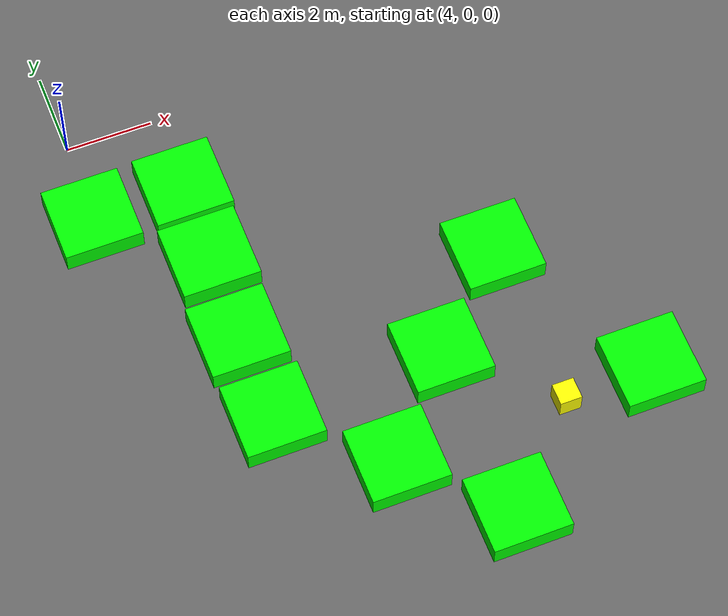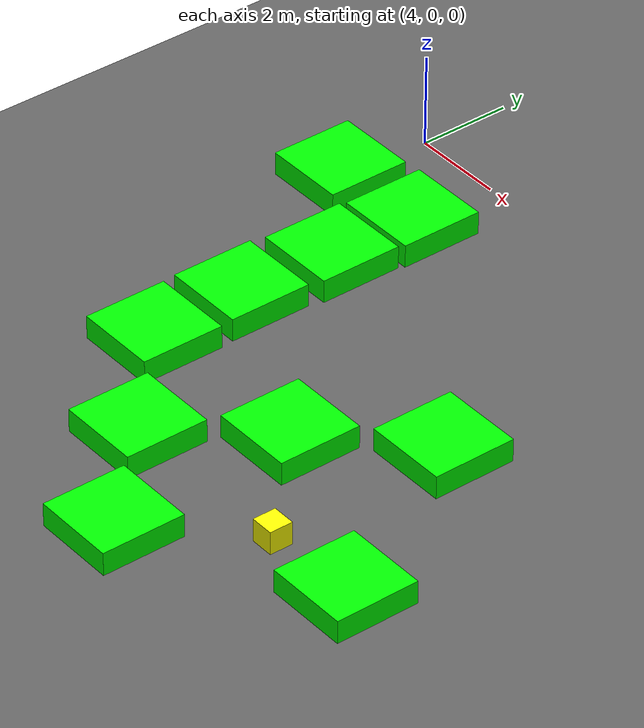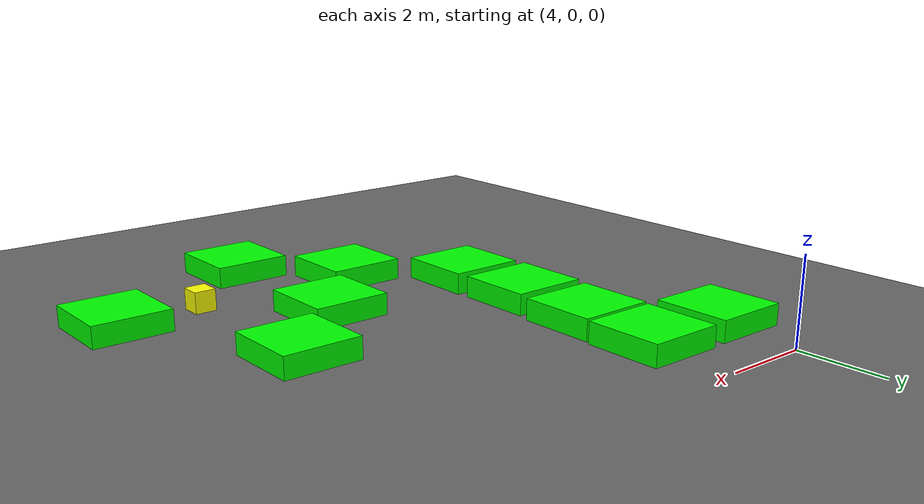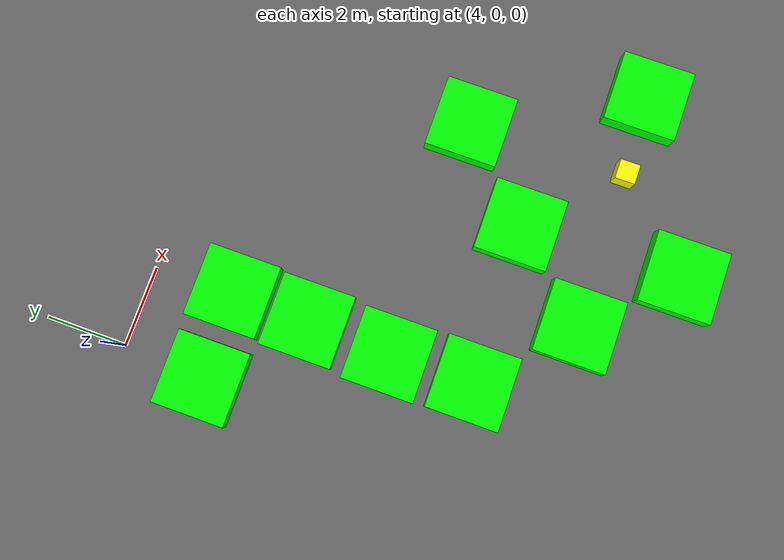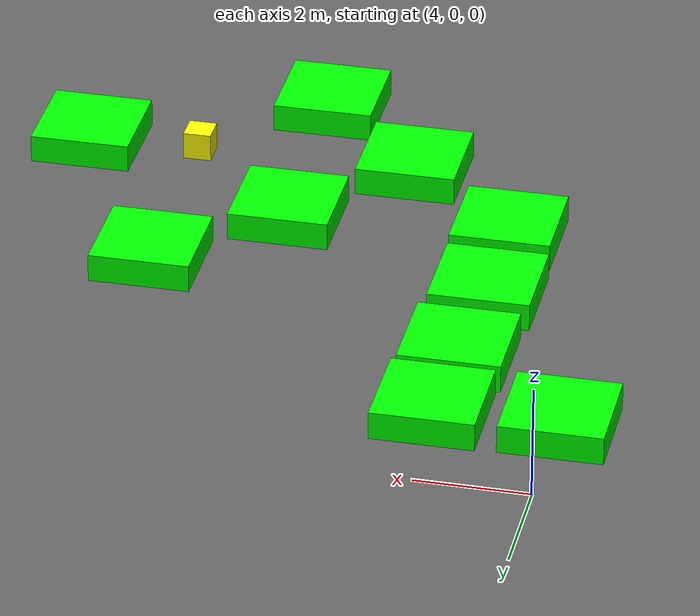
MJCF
<mujoco model="lvl4_standard_obs10_d3long_seed38">
    <compiler angle="degree" coordinate="local" inertiafromgeom="true"/>
    <option integrator="RK4" timestep="0.01"/>

    <asset>
        <texture builtin="gradient" height="100" rgb1="0.6 0.8 1" rgb2="0 0 0" type="skybox" width="100"/>
        <texture name="floor_texture" type="2d" builtin="checker" width="100" height="100" rgb1="0 0 0" rgb2="0.8 0.8 0.8"/>
        <material name="MatPlane" reflectance="0.5" shininess="1" specular="1" texrepeat="10 10" texture="floor_texture"/>
    </asset>

    <!-- Excluding the contact between the agent and the goal, and the agent and the floor -->
    <contact>
        <exclude body1="agent" body2="goal"/>
        <exclude body1 = "agent" body2 = "floor"/>
    </contact>

    <extension>
        <plugin plugin = "mujoco.pid">
            <instance name = "pid1">
                <config key="kp" value="2"/>
                <config key="ki" value="0"/>
                <config key="kd" value="55"/>
            </instance>
        </plugin>
    </extension>

    <worldbody>
        <light cutoff="100" diffuse="1 1 1" dir="-0 0 -1.3" directional="true" exponent="1" pos="0 0 1.3" specular=".1 .1 .1"/>
        <body name="floor" pos="0 0 0">
            <geom name="floor_geom" type="plane" size="20 20 0.1" material="MatPlane"/>
        </body>

                <body name="goal" pos="0.0000 0.0000 0">
            <geom name="goal_geom" type="plane" size="0.5 0.5 1" pos="0 0 0" rgba="1 0 0 1"/>
        </body>

                <body name="agent" pos="12.0000 -10.0000 0.250">
            <joint name="j1" type="slide" axis ="1 0 0 "/>
            <joint name="j2" type="slide" axis ="0 1 0 "/>
            <geom name="agent_geom" type="box" size="0.25 0.25 0.250" rgba="1 1 0 1"/>
        </body>

        <body name="obstacle1" pos="3.9177 -2.0593 0.250">  <geom name="obstacle1_geom" type="box" size="0.9000 0.9000 0.250" rgba="0 1 0 1"/></body>
        <body name="obstacle2" pos="6.0778 -2.0158 0.250">  <geom name="obstacle2_geom" type="box" size="0.9000 0.9000 0.250" rgba="0 1 0 1"/></body>
        <body name="obstacle3" pos="6.0132 -3.9299 0.250">  <geom name="obstacle3_geom" type="box" size="0.9000 0.9000 0.250" rgba="0 1 0 1"/></body>
        <body name="obstacle4" pos="5.9208 -6.0219 0.250">  <geom name="obstacle4_geom" type="box" size="0.9000 0.9000 0.250" rgba="0 1 0 1"/></body>
        <body name="obstacle5" pos="11.9248 -6.0284 0.250">  <geom name="obstacle5_geom" type="box" size="0.9000 0.9000 0.250" rgba="0 1 0 1"/></body>
        <body name="obstacle6" pos="5.9570 -8.0985 0.250">  <geom name="obstacle6_geom" type="box" size="0.9000 0.9000 0.250" rgba="0 1 0 1"/></body>
        <body name="obstacle7" pos="9.9030 -7.9731 0.250">  <geom name="obstacle7_geom" type="box" size="0.9000 0.9000 0.250" rgba="0 1 0 1"/></body>
        <body name="obstacle8" pos="8.0527 -10.0421 0.250">  <geom name="obstacle8_geom" type="box" size="0.9000 0.9000 0.250" rgba="0 1 0 1"/></body>
        <body name="obstacle9" pos="14.0080 -9.9389 0.250">  <geom name="obstacle9_geom" type="box" size="0.9000 0.9000 0.250" rgba="0 1 0 1"/></body>
        <body name="obstacle10" pos="9.9989 -12.0288 0.250">  <geom name="obstacle10_geom" type="box" size="0.9000 0.9000 0.250" rgba="0 1 0 1"/></body>

    </worldbody>

    <sensor>
<!-- SENSORS -->

        <distance name="dist1" geom1="agent_geom" geom2="obstacle1_geom" cutoff="1.5"/>
        <distance name="dist2" geom1="agent_geom" geom2="obstacle2_geom" cutoff="1.5"/>
        <distance name="dist3" geom1="agent_geom" geom2="obstacle3_geom" cutoff="1.5"/>
        <distance name="dist4" geom1="agent_geom" geom2="obstacle4_geom" cutoff="1.5"/>
        <distance name="dist5" geom1="agent_geom" geom2="obstacle5_geom" cutoff="1.5"/>
        <distance name="dist6" geom1="agent_geom" geom2="obstacle6_geom" cutoff="1.5"/>
        <distance name="dist7" geom1="agent_geom" geom2="obstacle7_geom" cutoff="1.5"/>
        <distance name="dist8" geom1="agent_geom" geom2="obstacle8_geom" cutoff="1.5"/>
        <distance name="dist9" geom1="agent_geom" geom2="obstacle9_geom" cutoff="1.5"/>
        <distance name="dist10" geom1="agent_geom" geom2="obstacle10_geom" cutoff="1.5"/>
</sensor>

    <actuator>
        <plugin joint="j1" plugin="mujoco.pid" instance="pid1" />
        <plugin joint="j2" plugin="mujoco.pid" instance="pid1"/>
    </actuator>
</mujoco>
